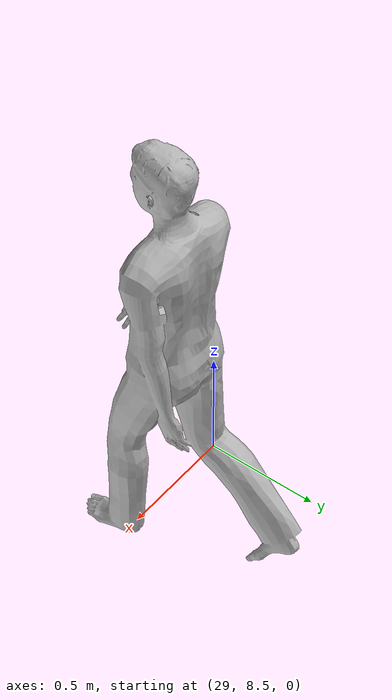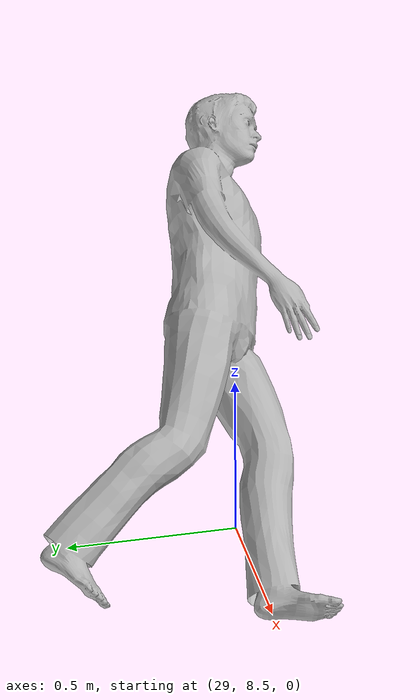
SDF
<?xml version="1.0" ?>
<sdf version="1.5">
  <model name="person_walking">
    <link name="link">
      <inertial>
        <pose>0 0 0.95 0 0 0</pose>
        <mass>80.0</mass>
        <inertia>
          <ixx>27.82</ixx>
          <ixy>0</ixy>
          <ixz>0</ixz>
          <iyy>24.88</iyy>
          <iyz>0</iyz>
          <izz>4.57</izz>
        </inertia>
      </inertial>

      <collision name="bottom">
        <pose>0 0 0.01 0 0 0</pose>
        <geometry>
          <box>
            <size>0.35 0.75 0.02</size>
          </box>
        </geometry>
      </collision>

      <collision name="person">
        <pose>29.461601 8.700830 -0.000001 0 0 0</pose>
        <geometry>
          <mesh>
            <uri>model://person_walking/meshes/walking.dae</uri>
          </mesh>
        </geometry>
      </collision>
      <!-- Set the initial position of the person for visualization -->

      <visual name="visual">
        <pose>29.461601 8.700830 -0.000001 0 0 0</pose>
        <geometry>
          <mesh>
            <uri>model://person_walking/meshes/walking.dae</uri>
          </mesh>
        </geometry>
      </visual>
    </link>
  </model>
</sdf>
